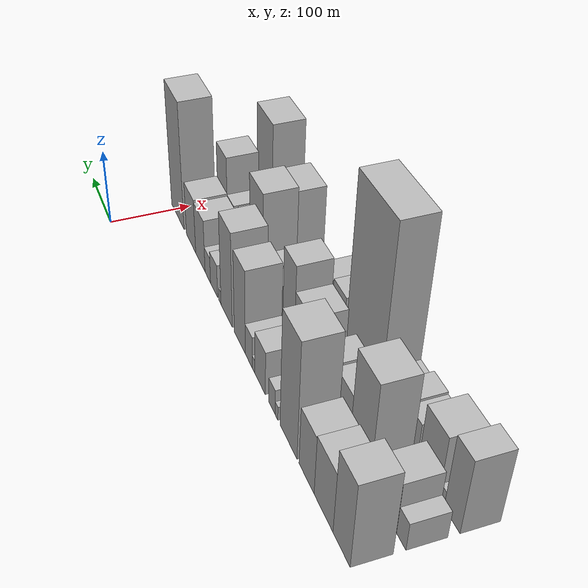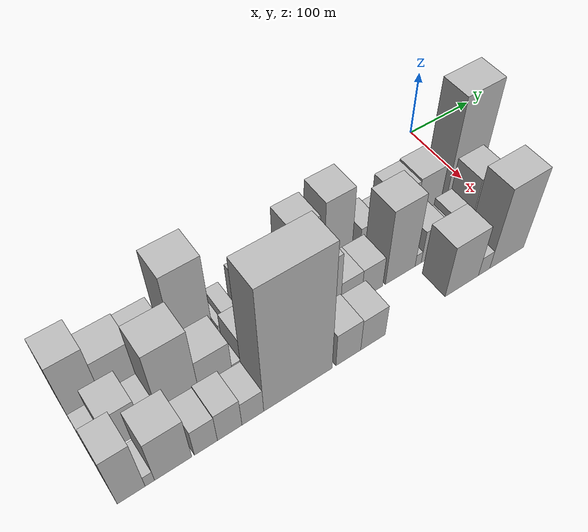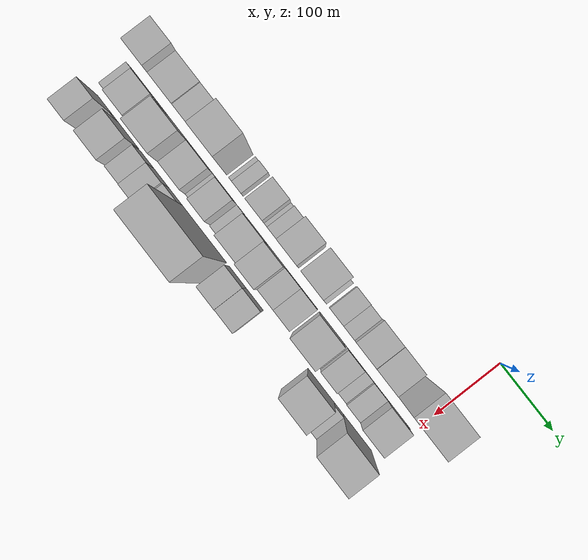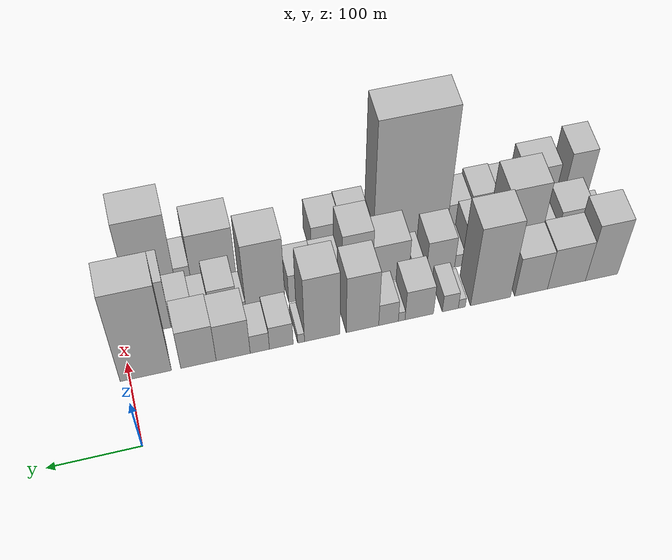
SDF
<sdf version="1.6">
 <world name="default">
  <model name="building_1">
   <static>1</static>
   <pose>100.0000 -529.0865 0 0.000000 0.000000 0.000000</pose>
   <link name="link">
    <pose>0 0 54.00 0 0 0</pose>
    <collision name="collision"><geometry><box><size>40.0000 37.8271 108.0000</size></box></geometry></collision>
    <visual name="visual">
     <cast_shadows>0</cast_shadows>
     <geometry><box><size>40.0000 37.8271 108.0000</size></box></geometry>
     <material>
      <script>
       <uri>model://HANNAS_wall/materials/scripts</uri>
       <uri>model://HANNAS_wall/materials/textures</uri>
       <name>vrc/HANNAS_wall</name>
      </script>
     </material>
    </visual>
   </link>
  </model>
  <model name="building_2">
   <static>1</static>
   <pose>100.0000 -488.0078 0 0.000000 0.000000 0.000000</pose>
   <link name="link">
    <pose>0 0 39.00 0 0 0</pose>
    <collision name="collision"><geometry><box><size>40.0000 44.3302 78.0000</size></box></geometry></collision>
    <visual name="visual">
     <cast_shadows>0</cast_shadows>
     <geometry><box><size>40.0000 44.3302 78.0000</size></box></geometry>
     <material>
      <script>
       <uri>model://HANNAS_wall/materials/scripts</uri>
       <uri>model://HANNAS_wall/materials/textures</uri>
       <name>vrc/HANNAS_wall</name>
      </script>
     </material>
    </visual>
   </link>
  </model>
  <model name="building_3">
   <static>1</static>
   <pose>100.0000 -446.8630 0 0.000000 0.000000 0.000000</pose>
   <link name="link">
    <pose>0 0 37.50 0 0 0</pose>
    <collision name="collision"><geometry><box><size>40.0000 37.9594 75.0000</size></box></geometry></collision>
    <visual name="visual">
     <cast_shadows>0</cast_shadows>
     <geometry><box><size>40.0000 37.9594 75.0000</size></box></geometry>
     <material>
      <script>
       <uri>model://HANNAS_wall/materials/scripts</uri>
       <uri>model://HANNAS_wall/materials/textures</uri>
       <name>vrc/HANNAS_wall</name>
      </script>
     </material>
    </visual>
   </link>
  </model>
  <model name="building_4">
   <static>1</static>
   <pose>100.0000 -399.9575 0 0.000000 0.000000 0.000000</pose>
   <link name="link">
    <pose>0 0 75.00 0 0 0</pose>
    <collision name="collision"><geometry><box><size>40.0000 45.8516 150.0000</size></box></geometry></collision>
    <visual name="visual">
     <cast_shadows>0</cast_shadows>
     <geometry><box><size>40.0000 45.8516 150.0000</size></box></geometry>
     <material>
      <script>
       <uri>model://HANNAS_wall/materials/scripts</uri>
       <uri>model://HANNAS_wall/materials/textures</uri>
       <name>vrc/HANNAS_wall</name>
      </script>
     </material>
    </visual>
   </link>
  </model>
  <model name="building_5">
   <static>1</static>
   <pose>100.0000 -367.0012 0 0.000000 0.000000 0.000000</pose>
   <link name="link">
    <pose>0 0 9.00 0 0 0</pose>
    <collision name="collision"><geometry><box><size>40.0000 8.0611 18.0000</size></box></geometry></collision>
    <visual name="visual">
     <cast_shadows>0</cast_shadows>
     <geometry><box><size>40.0000 8.0611 18.0000</size></box></geometry>
     <material>
      <script>
       <uri>model://HANNAS_wall/materials/scripts</uri>
       <uri>model://HANNAS_wall/materials/textures</uri>
       <name>vrc/HANNAS_wall</name>
      </script>
     </material>
    </visual>
   </link>
  </model>
  <model name="building_6">
   <static>1</static>
   <pose>100.0000 -353.8324 0 0.000000 0.000000 0.000000</pose>
   <link name="link">
    <pose>0 0 16.50 0 0 0</pose>
    <collision name="collision"><geometry><box><size>40.0000 18.2765 33.0000</size></box></geometry></collision>
    <visual name="visual">
     <cast_shadows>0</cast_shadows>
     <geometry><box><size>40.0000 18.2765 33.0000</size></box></geometry>
     <material>
      <script>
       <uri>model://HANNAS_wall/materials/scripts</uri>
       <uri>model://HANNAS_wall/materials/textures</uri>
       <name>vrc/HANNAS_wall</name>
      </script>
     </material>
    </visual>
   </link>
  </model>
  <model name="building_7">
   <static>1</static>
   <pose>100.0000 -318.5641 0 0.000000 0.000000 0.000000</pose>
   <link name="link">
    <pose>0 0 28.50 0 0 0</pose>
    <collision name="collision"><geometry><box><size>40.0000 32.2601 57.0000</size></box></geometry></collision>
    <visual name="visual">
     <cast_shadows>0</cast_shadows>
     <geometry><box><size>40.0000 32.2601 57.0000</size></box></geometry>
     <material>
      <script>
       <uri>model://HANNAS_wall/materials/scripts</uri>
       <uri>model://HANNAS_wall/materials/textures</uri>
       <name>vrc/HANNAS_wall</name>
      </script>
     </material>
    </visual>
   </link>
  </model>
  <model name="building_8">
   <static>1</static>
   <pose>100.0000 -298.6236 0 0.000000 0.000000 0.000000</pose>
   <link name="link">
    <pose>0 0 9.00 0 0 0</pose>
    <collision name="collision"><geometry><box><size>40.0000 7.6209 18.0000</size></box></geometry></collision>
    <visual name="visual">
     <cast_shadows>0</cast_shadows>
     <geometry><box><size>40.0000 7.6209 18.0000</size></box></geometry>
     <material>
      <script>
       <uri>model://HANNAS_wall/materials/scripts</uri>
       <uri>model://HANNAS_wall/materials/textures</uri>
       <name>vrc/HANNAS_wall</name>
      </script>
     </material>
    </visual>
   </link>
  </model>
  <model name="building_9">
   <static>1</static>
   <pose>100.0000 -283.7760 0 0.000000 0.000000 0.000000</pose>
   <link name="link">
    <pose>0 0 21.00 0 0 0</pose>
    <collision name="collision"><geometry><box><size>40.0000 22.0742 42.0000</size></box></geometry></collision>
    <visual name="visual">
     <cast_shadows>0</cast_shadows>
     <geometry><box><size>40.0000 22.0742 42.0000</size></box></geometry>
     <material>
      <script>
       <uri>model://HANNAS_wall/materials/scripts</uri>
       <uri>model://HANNAS_wall/materials/textures</uri>
       <name>vrc/HANNAS_wall</name>
      </script>
     </material>
    </visual>
   </link>
  </model>
  <model name="building_10">
   <static>1</static>
   <pose>100.0000 -254.5363 0 0.000000 0.000000 0.000000</pose>
   <link name="link">
    <pose>0 0 55.50 0 0 0</pose>
    <collision name="collision"><geometry><box><size>40.0000 36.4053 111.0000</size></box></geometry></collision>
    <visual name="visual">
     <cast_shadows>0</cast_shadows>
     <geometry><box><size>40.0000 36.4053 111.0000</size></box></geometry>
     <material>
      <script>
       <uri>model://HANNAS_wall/materials/scripts</uri>
       <uri>model://HANNAS_wall/materials/textures</uri>
       <name>vrc/HANNAS_wall</name>
      </script>
     </material>
    </visual>
   </link>
  </model>
  <model name="building_11">
   <static>1</static>
   <pose>100.0000 -209.6078 0 0.000000 0.000000 0.000000</pose>
   <link name="link">
    <pose>0 0 63.00 0 0 0</pose>
    <collision name="collision"><geometry><box><size>40.0000 39.4516 126.0000</size></box></geometry></collision>
    <visual name="visual">
     <cast_shadows>0</cast_shadows>
     <geometry><box><size>40.0000 39.4516 126.0000</size></box></geometry>
     <material>
      <script>
       <uri>model://HANNAS_wall/materials/scripts</uri>
       <uri>model://HANNAS_wall/materials/textures</uri>
       <name>vrc/HANNAS_wall</name>
      </script>
     </material>
    </visual>
   </link>
  </model>
  <model name="building_12">
   <static>1</static>
   <pose>100.0000 -186.1503 0 0.000000 0.000000 0.000000</pose>
   <link name="link">
    <pose>0 0 9.00 0 0 0</pose>
    <collision name="collision"><geometry><box><size>40.0000 7.4635 18.0000</size></box></geometry></collision>
    <visual name="visual">
     <cast_shadows>0</cast_shadows>
     <geometry><box><size>40.0000 7.4635 18.0000</size></box></geometry>
     <material>
      <script>
       <uri>model://HANNAS_wall/materials/scripts</uri>
       <uri>model://HANNAS_wall/materials/textures</uri>
       <name>vrc/HANNAS_wall</name>
      </script>
     </material>
    </visual>
   </link>
  </model>
  <model name="building_13">
   <static>1</static>
   <pose>100.0000 -164.3132 0 0.000000 0.000000 0.000000</pose>
   <link name="link">
    <pose>0 0 22.50 0 0 0</pose>
    <collision name="collision"><geometry><box><size>40.0000 26.2106 45.0000</size></box></geometry></collision>
    <visual name="visual">
     <cast_shadows>0</cast_shadows>
     <geometry><box><size>40.0000 26.2106 45.0000</size></box></geometry>
     <material>
      <script>
       <uri>model://HANNAS_wall/materials/scripts</uri>
       <uri>model://HANNAS_wall/materials/textures</uri>
       <name>vrc/HANNAS_wall</name>
      </script>
     </material>
    </visual>
   </link>
  </model>
  <model name="building_14">
   <static>1</static>
   <pose>100.0000 -140.6801 0 0.000000 0.000000 0.000000</pose>
   <link name="link">
    <pose>0 0 18.00 0 0 0</pose>
    <collision name="collision"><geometry><box><size>40.0000 21.0555 36.0000</size></box></geometry></collision>
    <visual name="visual">
     <cast_shadows>0</cast_shadows>
     <geometry><box><size>40.0000 21.0555 36.0000</size></box></geometry>
     <material>
      <script>
       <uri>model://HANNAS_wall/materials/scripts</uri>
       <uri>model://HANNAS_wall/materials/textures</uri>
       <name>vrc/HANNAS_wall</name>
      </script>
     </material>
    </visual>
   </link>
  </model>
  <model name="building_15">
   <static>1</static>
   <pose>100.0000 -111.5379 0 0.000000 0.000000 0.000000</pose>
   <link name="link">
    <pose>0 0 36.00 0 0 0</pose>
    <collision name="collision"><geometry><box><size>40.0000 37.2290 72.0000</size></box></geometry></collision>
    <visual name="visual">
     <cast_shadows>0</cast_shadows>
     <geometry><box><size>40.0000 37.2290 72.0000</size></box></geometry>
     <material>
      <script>
       <uri>model://HANNAS_wall/materials/scripts</uri>
       <uri>model://HANNAS_wall/materials/textures</uri>
       <name>vrc/HANNAS_wall</name>
      </script>
     </material>
    </visual>
   </link>
  </model>
  <model name="building_16">
   <static>1</static>
   <pose>100.0000 -73.6585 0 0.000000 0.000000 0.000000</pose>
   <link name="link">
    <pose>0 0 37.50 0 0 0</pose>
    <collision name="collision"><geometry><box><size>40.0000 38.5298 75.0000</size></box></geometry></collision>
    <visual name="visual">
     <cast_shadows>0</cast_shadows>
     <geometry><box><size>40.0000 38.5298 75.0000</size></box></geometry>
     <material>
      <script>
       <uri>model://HANNAS_wall/materials/scripts</uri>
       <uri>model://HANNAS_wall/materials/textures</uri>
       <name>vrc/HANNAS_wall</name>
      </script>
     </material>
    </visual>
   </link>
  </model>
  <model name="building_17">
   <static>1</static>
   <pose>100.0000 -16.7990 0 0.000000 0.000000 0.000000</pose>
   <link name="link">
    <pose>0 0 87.00 0 0 0</pose>
    <collision name="collision"><geometry><box><size>40.0000 55.1892 174.0000</size></box></geometry></collision>
    <visual name="visual">
     <cast_shadows>0</cast_shadows>
     <geometry><box><size>40.0000 55.1892 174.0000</size></box></geometry>
     <material>
      <script>
       <uri>model://HANNAS_wall/materials/scripts</uri>
       <uri>model://HANNAS_wall/materials/textures</uri>
       <name>vrc/HANNAS_wall</name>
      </script>
     </material>
    </visual>
   </link>
  </model>
  <model name="building_32">
   <static>1</static>
   <pose>152.0000 -538.5925 0 0.000000 0.000000 0.000000</pose>
   <link name="link">
    <pose>0 0 18.00 0 0 0</pose>
    <collision name="collision"><geometry><box><size>40.0000 18.8149 36.0000</size></box></geometry></collision>
    <visual name="visual">
     <cast_shadows>0</cast_shadows>
     <geometry><box><size>40.0000 18.8149 36.0000</size></box></geometry>
     <material>
      <script>
       <uri>model://HANNAS_wall/materials/scripts</uri>
       <uri>model://HANNAS_wall/materials/textures</uri>
       <name>vrc/HANNAS_wall</name>
      </script>
     </material>
    </visual>
   </link>
  </model>
  <model name="building_33">
   <static>1</static>
   <pose>152.0000 -510.6719 0 0.000000 0.000000 0.000000</pose>
   <link name="link">
    <pose>0 0 33.00 0 0 0</pose>
    <collision name="collision"><geometry><box><size>40.0000 37.0262 66.0000</size></box></geometry></collision>
    <visual name="visual">
     <cast_shadows>0</cast_shadows>
     <geometry><box><size>40.0000 37.0262 66.0000</size></box></geometry>
     <material>
      <script>
       <uri>model://HANNAS_wall/materials/scripts</uri>
       <uri>model://HANNAS_wall/materials/textures</uri>
       <name>vrc/HANNAS_wall</name>
      </script>
     </material>
    </visual>
   </link>
  </model>
  <model name="building_34">
   <static>1</static>
   <pose>152.0000 -482.3743 0 0.000000 0.000000 0.000000</pose>
   <link name="link">
    <pose>0 0 19.50 0 0 0</pose>
    <collision name="collision"><geometry><box><size>40.0000 19.5690 39.0000</size></box></geometry></collision>
    <visual name="visual">
     <cast_shadows>0</cast_shadows>
     <geometry><box><size>40.0000 19.5690 39.0000</size></box></geometry>
     <material>
      <script>
       <uri>model://HANNAS_wall/materials/scripts</uri>
       <uri>model://HANNAS_wall/materials/textures</uri>
       <name>vrc/HANNAS_wall</name>
      </script>
     </material>
    </visual>
   </link>
  </model>
  <model name="building_35">
   <static>1</static>
   <pose>152.0000 -449.0879 0 0.000000 0.000000 0.000000</pose>
   <link name="link">
    <pose>0 0 64.50 0 0 0</pose>
    <collision name="collision"><geometry><box><size>40.0000 47.0038 129.0000</size></box></geometry></collision>
    <visual name="visual">
     <cast_shadows>0</cast_shadows>
     <geometry><box><size>40.0000 47.0038 129.0000</size></box></geometry>
     <material>
      <script>
       <uri>model://HANNAS_wall/materials/scripts</uri>
       <uri>model://HANNAS_wall/materials/textures</uri>
       <name>vrc/HANNAS_wall</name>
      </script>
     </material>
    </visual>
   </link>
  </model>
  <model name="building_36">
   <static>1</static>
   <pose>152.0000 -405.4987 0 0.000000 0.000000 0.000000</pose>
   <link name="link">
    <pose>0 0 34.50 0 0 0</pose>
    <collision name="collision"><geometry><box><size>40.0000 40.1747 69.0000</size></box></geometry></collision>
    <visual name="visual">
     <cast_shadows>0</cast_shadows>
     <geometry><box><size>40.0000 40.1747 69.0000</size></box></geometry>
     <material>
      <script>
       <uri>model://HANNAS_wall/materials/scripts</uri>
       <uri>model://HANNAS_wall/materials/textures</uri>
       <name>vrc/HANNAS_wall</name>
      </script>
     </material>
    </visual>
   </link>
  </model>
  <model name="building_37">
   <static>1</static>
   <pose>152.0000 -379.8139 0 0.000000 0.000000 0.000000</pose>
   <link name="link">
    <pose>0 0 12.00 0 0 0</pose>
    <collision name="collision"><geometry><box><size>40.0000 11.1949 24.0000</size></box></geometry></collision>
    <visual name="visual">
     <cast_shadows>0</cast_shadows>
     <geometry><box><size>40.0000 11.1949 24.0000</size></box></geometry>
     <material>
      <script>
       <uri>model://HANNAS_wall/materials/scripts</uri>
       <uri>model://HANNAS_wall/materials/textures</uri>
       <name>vrc/HANNAS_wall</name>
      </script>
     </material>
    </visual>
   </link>
  </model>
  <model name="building_38">
   <static>1</static>
   <pose>152.0000 -357.7934 0 0.000000 0.000000 0.000000</pose>
   <link name="link">
    <pose>0 0 30.00 0 0 0</pose>
    <collision name="collision"><geometry><box><size>40.0000 32.8461 60.0000</size></box></geometry></collision>
    <visual name="visual">
     <cast_shadows>0</cast_shadows>
     <geometry><box><size>40.0000 32.8461 60.0000</size></box></geometry>
     <material>
      <script>
       <uri>model://HANNAS_wall/materials/scripts</uri>
       <uri>model://HANNAS_wall/materials/textures</uri>
       <name>vrc/HANNAS_wall</name>
      </script>
     </material>
    </visual>
   </link>
  </model>
  <model name="building_39">
   <static>1</static>
   <pose>152.0000 -331.6220 0 0.000000 0.000000 0.000000</pose>
   <link name="link">
    <pose>0 0 13.50 0 0 0</pose>
    <collision name="collision"><geometry><box><size>40.0000 13.4967 27.0000</size></box></geometry></collision>
    <visual name="visual">
     <cast_shadows>0</cast_shadows>
     <geometry><box><size>40.0000 13.4967 27.0000</size></box></geometry>
     <material>
      <script>
       <uri>model://HANNAS_wall/materials/scripts</uri>
       <uri>model://HANNAS_wall/materials/textures</uri>
       <name>vrc/HANNAS_wall</name>
      </script>
     </material>
    </visual>
   </link>
  </model>
  <model name="building_40">
   <static>1</static>
   <pose>152.0000 -300.0251 0 0.000000 0.000000 0.000000</pose>
   <link name="link">
    <pose>0 0 37.50 0 0 0</pose>
    <collision name="collision"><geometry><box><size>40.0000 41.6972 75.0000</size></box></geometry></collision>
    <visual name="visual">
     <cast_shadows>0</cast_shadows>
     <geometry><box><size>40.0000 41.6972 75.0000</size></box></geometry>
     <material>
      <script>
       <uri>model://HANNAS_wall/materials/scripts</uri>
       <uri>model://HANNAS_wall/materials/textures</uri>
       <name>vrc/HANNAS_wall</name>
      </script>
     </material>
    </visual>
   </link>
  </model>
  <model name="building_41">
   <static>1</static>
   <pose>152.0000 -261.8539 0 0.000000 0.000000 0.000000</pose>
   <link name="link">
    <pose>0 0 54.00 0 0 0</pose>
    <collision name="collision"><geometry><box><size>40.0000 34.6451 108.0000</size></box></geometry></collision>
    <visual name="visual">
     <cast_shadows>0</cast_shadows>
     <geometry><box><size>40.0000 34.6451 108.0000</size></box></geometry>
     <material>
      <script>
       <uri>model://HANNAS_wall/materials/scripts</uri>
       <uri>model://HANNAS_wall/materials/textures</uri>
       <name>vrc/HANNAS_wall</name>
      </script>
     </material>
    </visual>
   </link>
  </model>
  <model name="building_42">
   <static>1</static>
   <pose>152.0000 -229.7221 0 0.000000 0.000000 0.000000</pose>
   <link name="link">
    <pose>0 0 27.00 0 0 0</pose>
    <collision name="collision"><geometry><box><size>40.0000 29.6186 54.0000</size></box></geometry></collision>
    <visual name="visual">
     <cast_shadows>0</cast_shadows>
     <geometry><box><size>40.0000 29.6186 54.0000</size></box></geometry>
     <material>
      <script>
       <uri>model://HANNAS_wall/materials/scripts</uri>
       <uri>model://HANNAS_wall/materials/textures</uri>
       <name>vrc/HANNAS_wall</name>
      </script>
     </material>
    </visual>
   </link>
  </model>
  <model name="building_43">
   <static>1</static>
   <pose>152.0000 -199.6353 0 0.000000 0.000000 0.000000</pose>
   <link name="link">
    <pose>0 0 27.00 0 0 0</pose>
    <collision name="collision"><geometry><box><size>40.0000 30.5549 54.0000</size></box></geometry></collision>
    <visual name="visual">
     <cast_shadows>0</cast_shadows>
     <geometry><box><size>40.0000 30.5549 54.0000</size></box></geometry>
     <material>
      <script>
       <uri>model://HANNAS_wall/materials/scripts</uri>
       <uri>model://HANNAS_wall/materials/textures</uri>
       <name>vrc/HANNAS_wall</name>
      </script>
     </material>
    </visual>
   </link>
  </model>
  <model name="building_44">
   <static>1</static>
   <pose>152.0000 -158.4190 0 0.000000 0.000000 0.000000</pose>
   <link name="link">
    <pose>0 0 64.50 0 0 0</pose>
    <collision name="collision"><geometry><box><size>40.0000 43.8778 129.0000</size></box></geometry></collision>
    <visual name="visual">
     <cast_shadows>0</cast_shadows>
     <geometry><box><size>40.0000 43.8778 129.0000</size></box></geometry>
     <material>
      <script>
       <uri>model://HANNAS_wall/materials/scripts</uri>
       <uri>model://HANNAS_wall/materials/textures</uri>
       <name>vrc/HANNAS_wall</name>
      </script>
     </material>
    </visual>
   </link>
  </model>
  <model name="building_45">
   <static>1</static>
   <pose>152.0000 -131.8119 0 0.000000 0.000000 0.000000</pose>
   <link name="link">
    <pose>0 0 10.50 0 0 0</pose>
    <collision name="collision"><geometry><box><size>40.0000 9.3364 21.0000</size></box></geometry></collision>
    <visual name="visual">
     <cast_shadows>0</cast_shadows>
     <geometry><box><size>40.0000 9.3364 21.0000</size></box></geometry>
     <material>
      <script>
       <uri>model://HANNAS_wall/materials/scripts</uri>
       <uri>model://HANNAS_wall/materials/textures</uri>
       <name>vrc/HANNAS_wall</name>
      </script>
     </material>
    </visual>
   </link>
  </model>
  <model name="building_46">
   <static>1</static>
   <pose>152.0000 -111.8908 0 0.000000 0.000000 0.000000</pose>
   <link name="link">
    <pose>0 0 28.50 0 0 0</pose>
    <collision name="collision"><geometry><box><size>40.0000 30.5058 57.0000</size></box></geometry></collision>
    <visual name="visual">
     <cast_shadows>0</cast_shadows>
     <geometry><box><size>40.0000 30.5058 57.0000</size></box></geometry>
     <material>
      <script>
       <uri>model://HANNAS_wall/materials/scripts</uri>
       <uri>model://HANNAS_wall/materials/textures</uri>
       <name>vrc/HANNAS_wall</name>
      </script>
     </material>
    </visual>
   </link>
  </model>
  <model name="building_47">
   <static>1</static>
   <pose>152.0000 -87.6268 0 0.000000 0.000000 0.000000</pose>
   <link name="link">
    <pose>0 0 16.50 0 0 0</pose>
    <collision name="collision"><geometry><box><size>40.0000 18.0222 33.0000</size></box></geometry></collision>
    <visual name="visual">
     <cast_shadows>0</cast_shadows>
     <geometry><box><size>40.0000 18.0222 33.0000</size></box></geometry>
     <material>
      <script>
       <uri>model://HANNAS_wall/materials/scripts</uri>
       <uri>model://HANNAS_wall/materials/textures</uri>
       <name>vrc/HANNAS_wall</name>
      </script>
     </material>
    </visual>
   </link>
  </model>
  <model name="building_48">
   <static>1</static>
   <pose>152.0000 -65.9452 0 0.000000 0.000000 0.000000</pose>
   <link name="link">
    <pose>0 0 22.50 0 0 0</pose>
    <collision name="collision"><geometry><box><size>40.0000 25.3411 45.0000</size></box></geometry></collision>
    <visual name="visual">
     <cast_shadows>0</cast_shadows>
     <geometry><box><size>40.0000 25.3411 45.0000</size></box></geometry>
     <material>
      <script>
       <uri>model://HANNAS_wall/materials/scripts</uri>
       <uri>model://HANNAS_wall/materials/textures</uri>
       <name>vrc/HANNAS_wall</name>
      </script>
     </material>
    </visual>
   </link>
  </model>
  <model name="building_49">
   <static>1</static>
   <pose>152.0000 -34.2486 0 0.000000 0.000000 0.000000</pose>
   <link name="link">
    <pose>0 0 48.00 0 0 0</pose>
    <collision name="collision"><geometry><box><size>40.0000 38.0521 96.0000</size></box></geometry></collision>
    <visual name="visual">
     <cast_shadows>0</cast_shadows>
     <geometry><box><size>40.0000 38.0521 96.0000</size></box></geometry>
     <material>
      <script>
       <uri>model://HANNAS_wall/materials/scripts</uri>
       <uri>model://HANNAS_wall/materials/textures</uri>
       <name>vrc/HANNAS_wall</name>
      </script>
     </material>
    </visual>
   </link>
  </model>
  <model name="building_50">
   <static>1</static>
   <pose>152.0000 -11.3605 0 0.000000 0.000000 0.000000</pose>
   <link name="link">
    <pose>0 0 9.00 0 0 0</pose>
    <collision name="collision"><geometry><box><size>40.0000 7.7242 18.0000</size></box></geometry></collision>
    <visual name="visual">
     <cast_shadows>0</cast_shadows>
     <geometry><box><size>40.0000 7.7242 18.0000</size></box></geometry>
     <material>
      <script>
       <uri>model://HANNAS_wall/materials/scripts</uri>
       <uri>model://HANNAS_wall/materials/textures</uri>
       <name>vrc/HANNAS_wall</name>
      </script>
     </material>
    </visual>
   </link>
  </model>
  <model name="building_70">
   <static>1</static>
   <pose>204.0000 -532.9490 0 0.000000 0.000000 0.000000</pose>
   <link name="link">
    <pose>0 0 48.00 0 0 0</pose>
    <collision name="collision"><geometry><box><size>40.0000 30.1021 96.0000</size></box></geometry></collision>
    <visual name="visual">
     <cast_shadows>0</cast_shadows>
     <geometry><box><size>40.0000 30.1021 96.0000</size></box></geometry>
     <material>
      <script>
       <uri>model://HANNAS_wall/materials/scripts</uri>
       <uri>model://HANNAS_wall/materials/textures</uri>
       <name>vrc/HANNAS_wall</name>
      </script>
     </material>
    </visual>
   </link>
  </model>
  <model name="building_71">
   <static>1</static>
   <pose>204.0000 -512.7329 0 0.000000 0.000000 0.000000</pose>
   <link name="link">
    <pose>0 0 10.50 0 0 0</pose>
    <collision name="collision"><geometry><box><size>40.0000 10.3301 21.0000</size></box></geometry></collision>
    <visual name="visual">
     <cast_shadows>0</cast_shadows>
     <geometry><box><size>40.0000 10.3301 21.0000</size></box></geometry>
     <material>
      <script>
       <uri>model://HANNAS_wall/materials/scripts</uri>
       <uri>model://HANNAS_wall/materials/textures</uri>
       <name>vrc/HANNAS_wall</name>
      </script>
     </material>
    </visual>
   </link>
  </model>
  <model name="building_72">
   <static>1</static>
   <pose>204.0000 -486.7500 0 0.000000 0.000000 0.000000</pose>
   <link name="link">
    <pose>0 0 40.50 0 0 0</pose>
    <collision name="collision"><geometry><box><size>40.0000 41.6356 81.0000</size></box></geometry></collision>
    <visual name="visual">
     <cast_shadows>0</cast_shadows>
     <geometry><box><size>40.0000 41.6356 81.0000</size></box></geometry>
     <material>
      <script>
       <uri>model://HANNAS_wall/materials/scripts</uri>
       <uri>model://HANNAS_wall/materials/textures</uri>
       <name>vrc/HANNAS_wall</name>
      </script>
     </material>
    </visual>
   </link>
  </model>
  <model name="building_73">
   <static>1</static>
   <pose>204.0000 -449.5947 0 0.000000 0.000000 0.000000</pose>
   <link name="link">
    <pose>0 0 25.50 0 0 0</pose>
    <collision name="collision"><geometry><box><size>40.0000 26.6751 51.0000</size></box></geometry></collision>
    <visual name="visual">
     <cast_shadows>0</cast_shadows>
     <geometry><box><size>40.0000 26.6751 51.0000</size></box></geometry>
     <material>
      <script>
       <uri>model://HANNAS_wall/materials/scripts</uri>
       <uri>model://HANNAS_wall/materials/textures</uri>
       <name>vrc/HANNAS_wall</name>
      </script>
     </material>
    </visual>
   </link>
  </model>
  <model name="building_74">
   <static>1</static>
   <pose>204.0000 -421.7517 0 0.000000 0.000000 0.000000</pose>
   <link name="link">
    <pose>0 0 27.00 0 0 0</pose>
    <collision name="collision"><geometry><box><size>40.0000 29.0109 54.0000</size></box></geometry></collision>
    <visual name="visual">
     <cast_shadows>0</cast_shadows>
     <geometry><box><size>40.0000 29.0109 54.0000</size></box></geometry>
     <material>
      <script>
       <uri>model://HANNAS_wall/materials/scripts</uri>
       <uri>model://HANNAS_wall/materials/textures</uri>
       <name>vrc/HANNAS_wall</name>
      </script>
     </material>
    </visual>
   </link>
  </model>
  <model name="building_75">
   <static>1</static>
   <pose>204.0000 -394.0498 0 0.000000 0.000000 0.000000</pose>
   <link name="link">
    <pose>0 0 22.50 0 0 0</pose>
    <collision name="collision"><geometry><box><size>40.0000 26.3928 45.0000</size></box></geometry></collision>
    <visual name="visual">
     <cast_shadows>0</cast_shadows>
     <geometry><box><size>40.0000 26.3928 45.0000</size></box></geometry>
     <material>
      <script>
       <uri>model://HANNAS_wall/materials/scripts</uri>
       <uri>model://HANNAS_wall/materials/textures</uri>
       <name>vrc/HANNAS_wall</name>
      </script>
     </material>
    </visual>
   </link>
  </model>
  <model name="building_76">
   <static>1</static>
   <pose>204.0000 -337.4253 0 0.000000 0.000000 0.000000</pose>
   <link name="link">
    <pose>0 0 111.00 0 0 0</pose>
    <collision name="collision"><geometry><box><size>40.0000 86.8563 222.0000</size></box></geometry></collision>
    <visual name="visual">
     <cast_shadows>0</cast_shadows>
     <geometry><box><size>40.0000 86.8563 222.0000</size></box></geometry>
     <material>
      <script>
       <uri>model://HANNAS_wall/materials/scripts</uri>
       <uri>model://HANNAS_wall/materials/textures</uri>
       <name>vrc/HANNAS_wall</name>
      </script>
     </material>
    </visual>
   </link>
  </model>
  <model name="building_77">
   <static>1</static>
   <pose>204.0000 -272.3980 0 0.000000 0.000000 0.000000</pose>
   <link name="link">
    <pose>0 0 30.00 0 0 0</pose>
    <collision name="collision"><geometry><box><size>40.0000 33.1983 60.0000</size></box></geometry></collision>
    <visual name="visual">
     <cast_shadows>0</cast_shadows>
     <geometry><box><size>40.0000 33.1983 60.0000</size></box></geometry>
     <material>
      <script>
       <uri>model://HANNAS_wall/materials/scripts</uri>
       <uri>model://HANNAS_wall/materials/textures</uri>
       <name>vrc/HANNAS_wall</name>
      </script>
     </material>
    </visual>
   </link>
  </model>
  <model name="building_78">
   <static>1</static>
   <pose>204.0000 -238.9821 0 0.000000 0.000000 0.000000</pose>
   <link name="link">
    <pose>0 0 28.50 0 0 0</pose>
    <collision name="collision"><geometry><box><size>40.0000 33.6334 57.0000</size></box></geometry></collision>
    <visual name="visual">
     <cast_shadows>0</cast_shadows>
     <geometry><box><size>40.0000 33.6334 57.0000</size></box></geometry>
     <material>
      <script>
       <uri>model://HANNAS_wall/materials/scripts</uri>
       <uri>model://HANNAS_wall/materials/textures</uri>
       <name>vrc/HANNAS_wall</name>
      </script>
     </material>
    </visual>
   </link>
  </model>
  <model name="building_79">
   <static>1</static>
   <pose>204.0000 -110.3907 0 0.000000 0.000000 0.000000</pose>
   <link name="link">
    <pose>0 0 45.00 0 0 0</pose>
    <collision name="collision"><geometry><box><size>40.0000 50.5165 90.0000</size></box></geometry></collision>
    <visual name="visual">
     <cast_shadows>0</cast_shadows>
     <geometry><box><size>40.0000 50.5165 90.0000</size></box></geometry>
     <material>
      <script>
       <uri>model://HANNAS_wall/materials/scripts</uri>
       <uri>model://HANNAS_wall/materials/textures</uri>
       <name>vrc/HANNAS_wall</name>
      </script>
     </material>
    </visual>
   </link>
  </model>
  <model name="building_80">
   <static>1</static>
   <pose>204.0000 -76.3709 0 0.000000 0.000000 0.000000</pose>
   <link name="link">
    <pose>0 0 16.50 0 0 0</pose>
    <collision name="collision"><geometry><box><size>40.0000 17.5231 33.0000</size></box></geometry></collision>
    <visual name="visual">
     <cast_shadows>0</cast_shadows>
     <geometry><box><size>40.0000 17.5231 33.0000</size></box></geometry>
     <material>
      <script>
       <uri>model://HANNAS_wall/materials/scripts</uri>
       <uri>model://HANNAS_wall/materials/textures</uri>
       <name>vrc/HANNAS_wall</name>
      </script>
     </material>
    </visual>
   </link>
  </model>
  <model name="building_81">
   <static>1</static>
   <pose>204.0000 -40.5029 0 0.000000 0.000000 0.000000</pose>
   <link name="link">
    <pose>0 0 69.00 0 0 0</pose>
    <collision name="collision"><geometry><box><size>40.0000 54.2128 138.0000</size></box></geometry></collision>
    <visual name="visual">
     <cast_shadows>0</cast_shadows>
     <geometry><box><size>40.0000 54.2128 138.0000</size></box></geometry>
     <material>
      <script>
       <uri>model://HANNAS_wall/materials/scripts</uri>
       <uri>model://HANNAS_wall/materials/textures</uri>
       <name>vrc/HANNAS_wall</name>
      </script>
     </material>
    </visual>
   </link>
  </model>
 </world>
</sdf>
